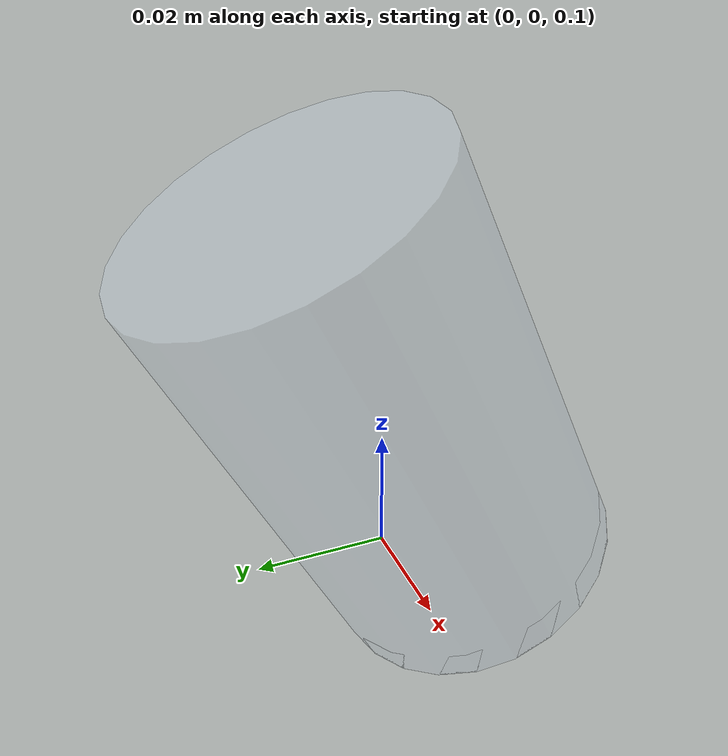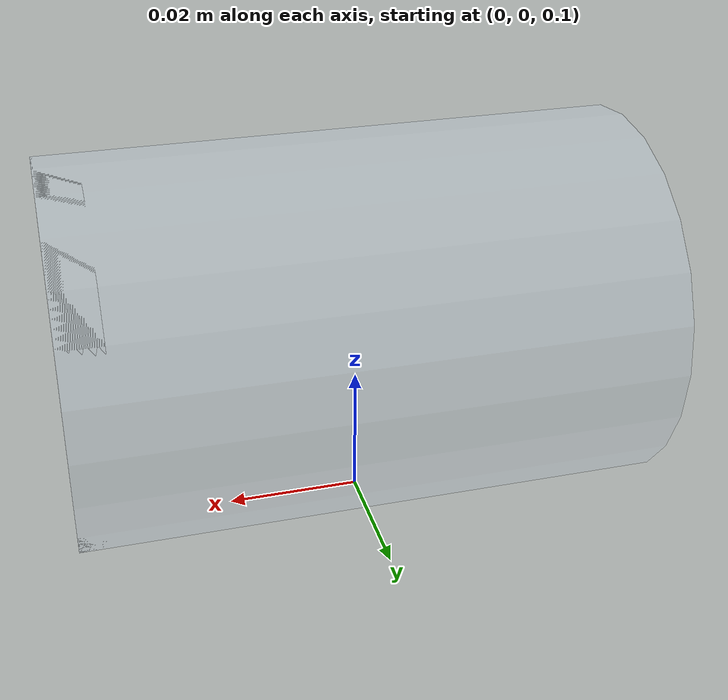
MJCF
<mujoco model="mug">
  <compiler angle="degree"/>

  <asset>
    <material name="glass"
              rgba="0.8 0.9 1 0.2"
              specular="1"
              shininess="1"
              reflectance="0.2"/>
  </asset>

  <worldbody>
    <body name="mug" pos="0 0 0.130" quat="0.7071068 0 -0.7071068 0">
      <geom name="mug_outer_visual" type="cylinder" size="0.028 0.042"
            pos="0 0 -0.002" material="glass"
            contype="0" conaffinity="0"/>
      <geom name="mug_inner_visual" type="cylinder" size="0.0235 0.037"
            pos="0 0 -0.004" rgba="1 1 1 0.003"
            contype="0" conaffinity="0"/>
      <geom name="mug_base_visual" type="cylinder" size="0.028 0.003"
            pos="0 0 -0.041" material="glass"
            contype="0" conaffinity="0"/>
      <geom name="mug_bottom_col" type="box" size="0.022 0.022 0.004"
            pos="0 0 -0.038" mass="0.006" rgba="1 1 1 0"
            contype="1" conaffinity="1" condim="4"/>
      <geom name="mug_side_left_col" type="box" size="0.003 0.022 0.038"
            pos="-0.025 0 0" mass="0.004" rgba="1 1 1 0"
            contype="1" conaffinity="1" condim="4"/>
      <geom name="mug_side_right_col" type="box" size="0.003 0.022 0.038"
            pos="0.025 0 0" mass="0.004" rgba="1 1 1 0"
            contype="1" conaffinity="1" condim="4"/>
      <geom name="mug_back_col" type="box" size="0.022 0.003 0.038"
            pos="0 -0.025 0" mass="0.004" rgba="1 1 1 0"
            contype="1" conaffinity="1" condim="4"/>
      <geom name="mug_front_col" type="box" size="0.022 0.003 0.038"
            pos="0 0.025 0" mass="0.004" rgba="1 1 1 0"
            contype="1" conaffinity="1" condim="4"/>
      <site name="outlet" pos="0 0 0.070" size="0.001" rgba="0 0 0 0"/>
      <site name="center" pos="0 0 0" size="0.001" rgba="0 0 0 0"/>
    </body>
  </worldbody>
</mujoco>
